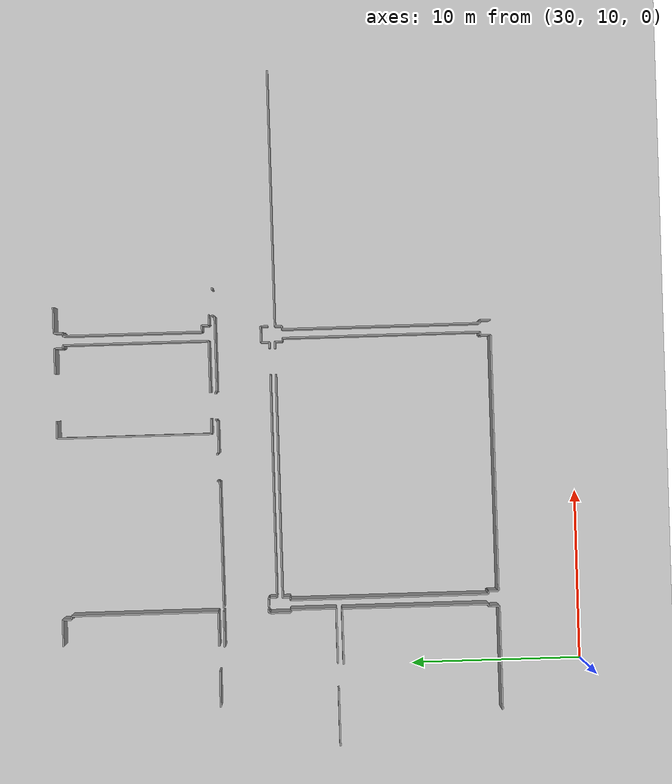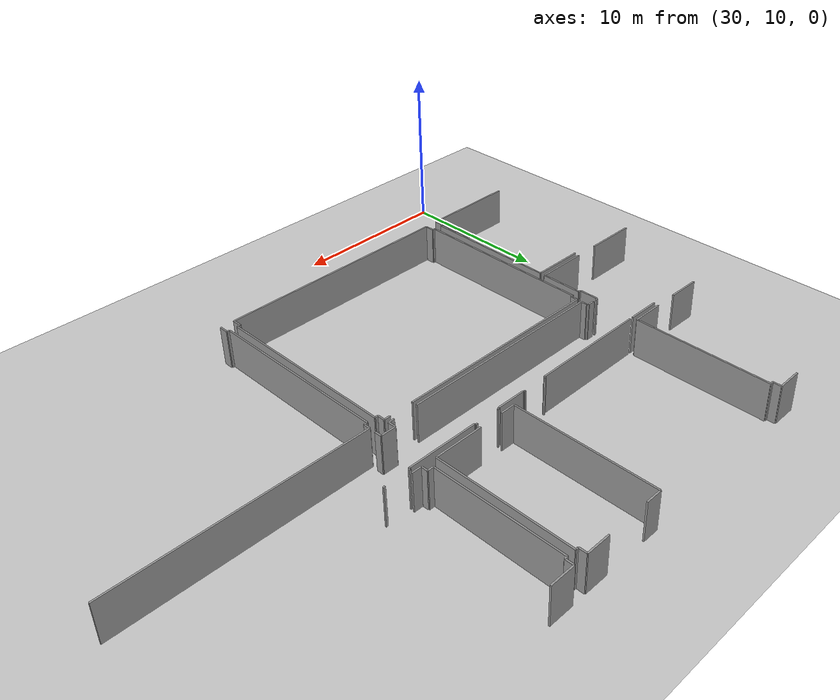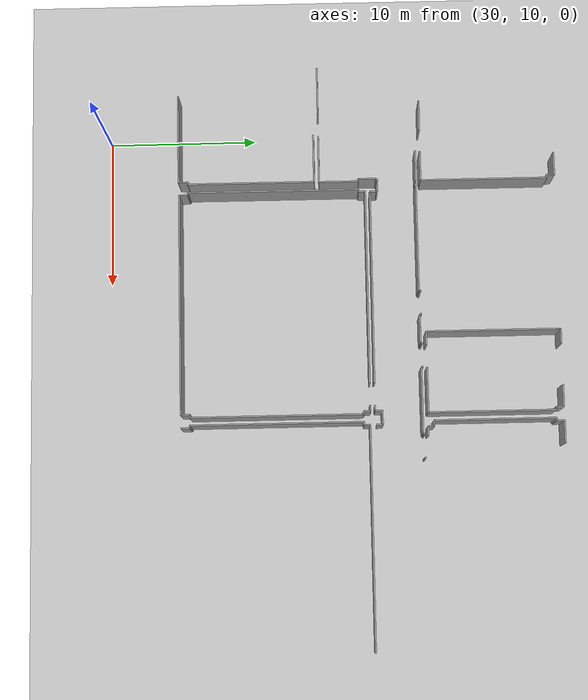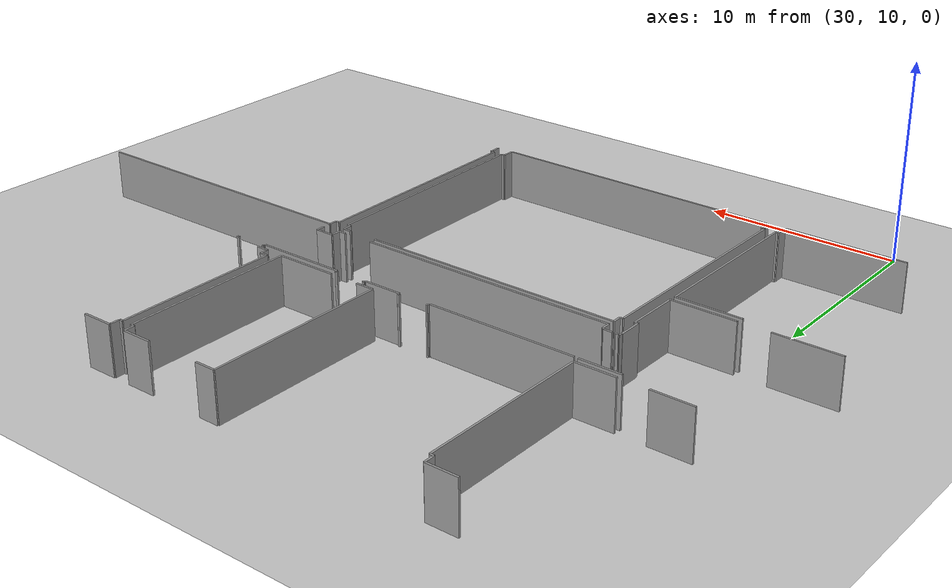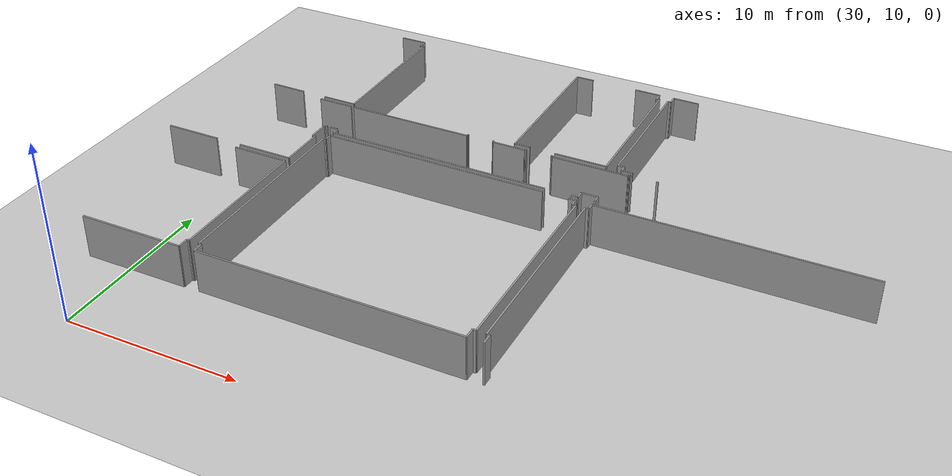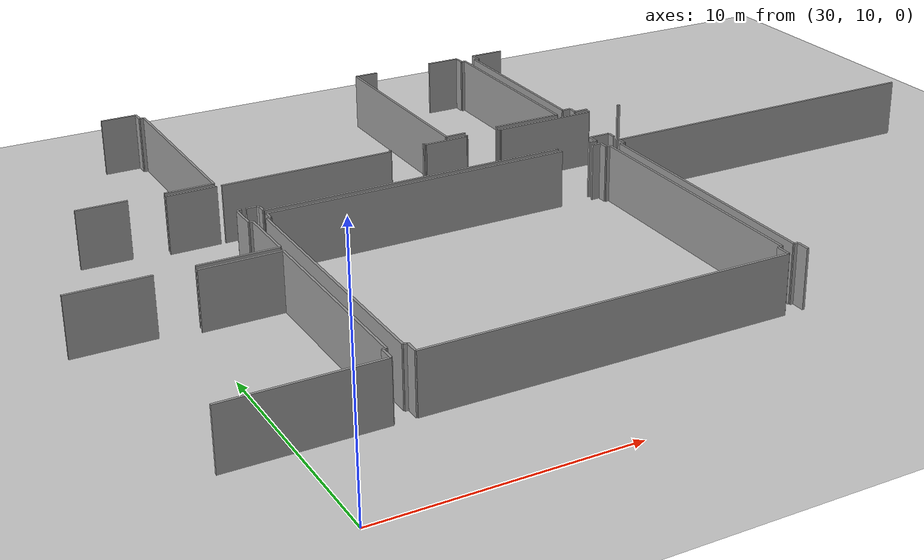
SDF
<sdf version="1.6">
 <world name="default">
  <model name="ground_plane">
   <static>1</static>
   <link name="link">
    <collision name="collision">
     <geometry><plane><normal>0 0 1</normal><size>100 100</size></plane></geometry>
     <surface><friction><ode><mu>100</mu><mu2>50</mu2></ode></friction></surface>
    </collision>
    <visual name="visual">
     <cast_shadows>0</cast_shadows>
     <geometry><plane><normal>0 0 1</normal><size>100 100</size></plane></geometry>
     <material>
      <script><uri>file://media/materials/scripts/gazebo.material</uri><name>Gazebo/Grey</name></script>
     </material>
    </visual>
   </link>
  </model>
  <model name="0510035739_A_40_1_102">
   <static>1</static>
   <link name="Wall_750">
    <collision name="Wall_750_Collision">
     <geometry><box><size>2.10934405539 0.1 2.5</size></box></geometry>
     <pose>1.05467202769 0 1.25 0 0 0</pose>
    </collision>
    <visual name="Wall_750_Visual">
     <pose>1.05467202769 0 1.25 0 0 0</pose>
     <geometry><box><size>2.10934405539 0.1 2.5</size></box></geometry>
     <material>
      <script><uri>file://media/materials/scripts/gazebo.material</uri><name>Gazebo/Grey</name></script>
      <ambient>1 1 1 1</ambient>
     </material>
    </visual>
    <pose>123.992801586 -18.7337058202 0 0 0 0.0</pose>
   </link>
   <link name="Wall_751">
    <collision name="Wall_751_Collision">
     <geometry><box><size>0.12634158332 0.1 2.5</size></box></geometry>
     <pose>0.0631707916599 0 1.25 0 0 0</pose>
    </collision>
    <visual name="Wall_751_Visual">
     <pose>0.0631707916599 0 1.25 0 0 0</pose>
     <geometry><box><size>0.12634158332 0.1 2.5</size></box></geometry>
     <material>
      <script><uri>file://media/materials/scripts/gazebo.material</uri><name>Gazebo/Grey</name></script>
      <ambient>1 1 1 1</ambient>
     </material>
    </visual>
    <pose>126.102145642 -21.3838224188 0 0 0 3.14159265359</pose>
   </link>
   <link name="Wall_752">
    <collision name="Wall_752_Collision">
     <geometry><box><size>0.134647181973 0.1 2.5</size></box></geometry>
     <pose>0.0673235909866 0 1.25 0 0 0</pose>
    </collision>
    <visual name="Wall_752_Visual">
     <pose>0.0673235909866 0 1.25 0 0 0</pose>
     <geometry><box><size>0.134647181973 0.1 2.5</size></box></geometry>
     <material>
      <script><uri>file://media/materials/scripts/gazebo.material</uri><name>Gazebo/Grey</name></script>
      <ambient>1 1 1 1</ambient>
     </material>
    </visual>
    <pose>125.975804058 -21.3838224188 0 0 0 -2.03359791231</pose>
   </link>
   <link name="Wall_753">
    <collision name="Wall_753_Collision">
     <geometry><box><size>1.18266929708 0.1 2.5</size></box></geometry>
     <pose>0.591334648542 0 1.25 0 0 0</pose>
    </collision>
    <visual name="Wall_753_Visual">
     <pose>0.591334648542 0 1.25 0 0 0</pose>
     <geometry><box><size>1.18266929708 0.1 2.5</size></box></geometry>
     <material>
      <script><uri>file://media/materials/scripts/gazebo.material</uri><name>Gazebo/Grey</name></script>
      <ambient>1 1 1 1</ambient>
     </material>
    </visual>
    <pose>125.915689918 -21.5043054206 0 0 0 -1.57079632679</pose>
   </link>
   <link name="Wall_754">
    <collision name="Wall_754_Collision">
     <geometry><box><size>0.164295002503 0.1 2.5</size></box></geometry>
     <pose>0.0821475012513 0 1.25 0 0 0</pose>
    </collision>
    <visual name="Wall_754_Visual">
     <pose>0.0821475012513 0 1.25 0 0 0</pose>
     <geometry><box><size>0.164295002503 0.1 2.5</size></box></geometry>
     <material>
      <script><uri>file://media/materials/scripts/gazebo.material</uri><name>Gazebo/Grey</name></script>
      <ambient>1 1 1 1</ambient>
     </material>
    </visual>
    <pose>125.915689918 -22.6869747177 0 0 0 0.0</pose>
   </link>
   <link name="Wall_755">
    <collision name="Wall_755_Collision">
     <geometry><box><size>2.67686229659 0.1 2.5</size></box></geometry>
     <pose>1.33843114829 0 1.25 0 0 0</pose>
    </collision>
    <visual name="Wall_755_Visual">
     <pose>1.33843114829 0 1.25 0 0 0</pose>
     <geometry><box><size>2.67686229659 0.1 2.5</size></box></geometry>
     <material>
      <script><uri>file://media/materials/scripts/gazebo.material</uri><name>Gazebo/Grey</name></script>
      <ambient>1 1 1 1</ambient>
     </material>
    </visual>
    <pose>126.079984921 -22.6869747177 0 0 0 -1.57079632679</pose>
   </link>
   <link name="Wall_756">
    <collision name="Wall_756_Collision">
     <geometry><box><size>3.2586449101 0.1 2.5</size></box></geometry>
     <pose>1.62932245505 0 1.25 0 0 0</pose>
    </collision>
    <visual name="Wall_756_Visual">
     <pose>1.62932245505 0 1.25 0 0 0</pose>
     <geometry><box><size>3.2586449101 0.1 2.5</size></box></geometry>
     <material>
      <script><uri>file://media/materials/scripts/gazebo.material</uri><name>Gazebo/Grey</name></script>
      <ambient>1 1 1 1</ambient>
     </material>
    </visual>
    <pose>126.079984921 -25.3638370143 0 0 0 3.14159265359</pose>
   </link>
   <link name="Wall_757">
    <collision name="Wall_757_Collision">
     <geometry><box><size>3.28615477099 0.1 2.5</size></box></geometry>
     <pose>1.64307738549 0 1.25 0 0 0</pose>
    </collision>
    <visual name="Wall_757_Visual">
     <pose>1.64307738549 0 1.25 0 0 0</pose>
     <geometry><box><size>3.28615477099 0.1 2.5</size></box></geometry>
     <material>
      <script><uri>file://media/materials/scripts/gazebo.material</uri><name>Gazebo/Grey</name></script>
      <ambient>1 1 1 1</ambient>
     </material>
    </visual>
    <pose>121.258881801 -25.3638370143 0 0 0 3.14159265359</pose>
   </link>
   <link name="Wall_783">
    <collision name="Wall_783_Collision">
     <geometry><box><size>1.57137344254 0.1 2.5</size></box></geometry>
     <pose>0.78568672127 0 1.25 0 0 0</pose>
    </collision>
    <visual name="Wall_783_Visual">
     <pose>0.78568672127 0 1.25 0 0 0</pose>
     <geometry><box><size>1.57137344254 0.1 2.5</size></box></geometry>
     <material>
      <script><uri>file://media/materials/scripts/gazebo.material</uri><name>Gazebo/Grey</name></script>
      <ambient>1 1 1 1</ambient>
     </material>
    </visual>
    <pose>124.322410475 -9.2509548851 0 0 0 0.0</pose>
   </link>
   <link name="Wall_784">
    <collision name="Wall_784_Collision">
     <geometry><box><size>0.520394868392 0.1 2.5</size></box></geometry>
     <pose>0.260197434196 0 1.25 0 0 0</pose>
    </collision>
    <visual name="Wall_784_Visual">
     <pose>0.260197434196 0 1.25 0 0 0</pose>
     <geometry><box><size>0.520394868392 0.1 2.5</size></box></geometry>
     <material>
      <script><uri>file://media/materials/scripts/gazebo.material</uri><name>Gazebo/Grey</name></script>
      <ambient>1 1 1 1</ambient>
     </material>
    </visual>
    <pose>125.893783918 -9.2509548851 0 0 0 -1.57079632679</pose>
   </link>
   <link name="Wall_785">
    <collision name="Wall_785_Collision">
     <geometry><box><size>0.197154003003 0.1 2.5</size></box></geometry>
     <pose>0.0985770015016 0 1.25 0 0 0</pose>
    </collision>
    <visual name="Wall_785_Visual">
     <pose>0.0985770015016 0 1.25 0 0 0</pose>
     <geometry><box><size>0.197154003003 0.1 2.5</size></box></geometry>
     <material>
      <script><uri>file://media/materials/scripts/gazebo.material</uri><name>Gazebo/Grey</name></script>
      <ambient>1 1 1 1</ambient>
     </material>
    </visual>
    <pose>125.893783918 -9.77134975349 0 0 0 0.0</pose>
   </link>
   <link name="Wall_786">
    <collision name="Wall_786_Collision">
     <geometry><box><size>8.63911520136 0.1 2.5</size></box></geometry>
     <pose>4.31955760068 0 1.25 0 0 0</pose>
    </collision>
    <visual name="Wall_786_Visual">
     <pose>4.31955760068 0 1.25 0 0 0</pose>
     <geometry><box><size>8.63911520136 0.1 2.5</size></box></geometry>
     <material>
      <script><uri>file://media/materials/scripts/gazebo.material</uri><name>Gazebo/Grey</name></script>
      <ambient>1 1 1 1</ambient>
     </material>
    </visual>
    <pose>126.090937921 -9.77134975349 0 0 0 -1.57079632679</pose>
   </link>
   <link name="Wall_787">
    <collision name="Wall_787_Collision">
     <geometry><box><size>2.04260717065 0.1 2.5</size></box></geometry>
     <pose>1.02130358532 0 1.25 0 0 0</pose>
    </collision>
    <visual name="Wall_787_Visual">
     <pose>1.02130358532 0 1.25 0 0 0</pose>
     <geometry><box><size>2.04260717065 0.1 2.5</size></box></geometry>
     <material>
      <script><uri>file://media/materials/scripts/gazebo.material</uri><name>Gazebo/Grey</name></script>
      <ambient>1 1 1 1</ambient>
     </material>
    </visual>
    <pose>126.090937921 -18.4104649549 0 0 0 3.14159265359</pose>
   </link>
   <link name="Wall_788">
    <collision name="Wall_788_Collision">
     <geometry><box><size>2.09012534845 0.1 2.5</size></box></geometry>
     <pose>1.04506267423 0 1.25 0 0 0</pose>
    </collision>
    <visual name="Wall_788_Visual">
     <pose>1.04506267423 0 1.25 0 0 0</pose>
     <geometry><box><size>2.09012534845 0.1 2.5</size></box></geometry>
     <material>
      <script><uri>file://media/materials/scripts/gazebo.material</uri><name>Gazebo/Grey</name></script>
      <ambient>1 1 1 1</ambient>
     </material>
    </visual>
    <pose>122.567128518 -18.4104649549 0 0 0 3.13001486502</pose>
   </link>
   <link name="Wall_789">
    <collision name="Wall_789_Collision">
     <geometry><box><size>9.08564099886 0.1 2.5</size></box></geometry>
     <pose>4.54282049943 0 1.25 0 0 0</pose>
    </collision>
    <visual name="Wall_789_Visual">
     <pose>4.54282049943 0 1.25 0 0 0</pose>
     <geometry><box><size>9.08564099886 0.1 2.5</size></box></geometry>
     <material>
      <script><uri>file://media/materials/scripts/gazebo.material</uri><name>Gazebo/Grey</name></script>
      <ambient>1 1 1 1</ambient>
     </material>
    </visual>
    <pose>136.572449638 -18.3381242096 0 0 0 1.57079632679</pose>
   </link>
   <link name="Wall_790">
    <collision name="Wall_790_Collision">
     <geometry><box><size>1.03926141118 0.1 2.5</size></box></geometry>
     <pose>0.51963070559 0 1.25 0 0 0</pose>
    </collision>
    <visual name="Wall_790_Visual">
     <pose>0.51963070559 0 1.25 0 0 0</pose>
     <geometry><box><size>1.03926141118 0.1 2.5</size></box></geometry>
     <material>
      <script><uri>file://media/materials/scripts/gazebo.material</uri><name>Gazebo/Grey</name></script>
      <ambient>1 1 1 1</ambient>
     </material>
    </visual>
    <pose>136.572449638 -9.25248321071 0 0 0 0.0</pose>
   </link>
   <link name="Wall_791">
    <collision name="Wall_791_Collision">
     <geometry><box><size>1.50489127874 0.1 2.5</size></box></geometry>
     <pose>0.752445639369 0 1.25 0 0 0</pose>
    </collision>
    <visual name="Wall_791_Visual">
     <pose>0.752445639369 0 1.25 0 0 0</pose>
     <geometry><box><size>1.50489127874 0.1 2.5</size></box></geometry>
     <material>
      <script><uri>file://media/materials/scripts/gazebo.material</uri><name>Gazebo/Grey</name></script>
      <ambient>1 1 1 1</ambient>
     </material>
    </visual>
    <pose>140.375942627 -9.25248321071 0 0 0 0.0</pose>
   </link>
   <link name="Wall_792">
    <collision name="Wall_792_Collision">
     <geometry><box><size>0.507913542621 0.1 2.5</size></box></geometry>
     <pose>0.25395677131 0 1.25 0 0 0</pose>
    </collision>
    <visual name="Wall_792_Visual">
     <pose>0.25395677131 0 1.25 0 0 0</pose>
     <geometry><box><size>0.507913542621 0.1 2.5</size></box></geometry>
     <material>
      <script><uri>file://media/materials/scripts/gazebo.material</uri><name>Gazebo/Grey</name></script>
      <ambient>1 1 1 1</ambient>
     </material>
    </visual>
    <pose>141.880833905 -9.25248321071 0 0 0 -1.57079632679</pose>
   </link>
   <link name="Wall_793">
    <collision name="Wall_793_Collision">
     <geometry><box><size>0.18085186322 0.1 2.5</size></box></geometry>
     <pose>0.09042593161 0 1.25 0 0 0</pose>
    </collision>
    <visual name="Wall_793_Visual">
     <pose>0.09042593161 0 1.25 0 0 0</pose>
     <geometry><box><size>0.18085186322 0.1 2.5</size></box></geometry>
     <material>
      <script><uri>file://media/materials/scripts/gazebo.material</uri><name>Gazebo/Grey</name></script>
      <ambient>1 1 1 1</ambient>
     </material>
    </visual>
    <pose>141.880833905 -9.76039675333 0 0 0 0.0</pose>
   </link>
   <link name="Wall_794">
    <collision name="Wall_794_Collision">
     <geometry><box><size>8.57874633998 0.1 2.5</size></box></geometry>
     <pose>4.28937316999 0 1.25 0 0 0</pose>
    </collision>
    <visual name="Wall_794_Visual">
     <pose>4.28937316999 0 1.25 0 0 0</pose>
     <geometry><box><size>8.57874633998 0.1 2.5</size></box></geometry>
     <material>
      <script><uri>file://media/materials/scripts/gazebo.material</uri><name>Gazebo/Grey</name></script>
      <ambient>1 1 1 1</ambient>
     </material>
    </visual>
    <pose>142.061685769 -9.76039675333 0 0 0 -1.57079632679</pose>
   </link>
   <link name="Wall_795">
    <collision name="Wall_795_Collision">
     <geometry><box><size>3.06633060485 0.1 2.5</size></box></geometry>
     <pose>1.53316530242 0 1.25 0 0 0</pose>
    </collision>
    <visual name="Wall_795_Visual">
     <pose>1.53316530242 0 1.25 0 0 0</pose>
     <geometry><box><size>3.06633060485 0.1 2.5</size></box></geometry>
     <material>
      <script><uri>file://media/materials/scripts/gazebo.material</uri><name>Gazebo/Grey</name></script>
      <ambient>1 1 1 1</ambient>
     </material>
    </visual>
    <pose>142.061685769 -18.3391430933 0 0 0 3.14159265359</pose>
   </link>
   <link name="Wall_796">
    <collision name="Wall_796_Collision">
     <geometry><box><size>0.919797857403 0.1 2.5</size></box></geometry>
     <pose>0.459898928701 0 1.25 0 0 0</pose>
    </collision>
    <visual name="Wall_796_Visual">
     <pose>0.459898928701 0 1.25 0 0 0</pose>
     <geometry><box><size>0.919797857403 0.1 2.5</size></box></geometry>
     <material>
      <script><uri>file://media/materials/scripts/gazebo.material</uri><name>Gazebo/Grey</name></script>
      <ambient>1 1 1 1</ambient>
     </material>
    </visual>
    <pose>137.492246932 -18.3391430933 0 0 0 3.14048492765</pose>
   </link>
   <link name="Wall_797">
    <collision name="Wall_797_Collision">
     <geometry><box><size>8.19691965974 0.1 2.5</size></box></geometry>
     <pose>4.09845982987 0 1.25 0 0 0</pose>
    </collision>
    <visual name="Wall_797_Visual">
     <pose>4.09845982987 0 1.25 0 0 0</pose>
     <geometry><box><size>8.19691965974 0.1 2.5</size></box></geometry>
     <material>
      <script><uri>file://media/materials/scripts/gazebo.material</uri><name>Gazebo/Grey</name></script>
      <ambient>1 1 1 1</ambient>
     </material>
    </visual>
    <pose>142.603731916 -17.9649580411 0 0 0 1.57079632679</pose>
   </link>
   <link name="Wall_798">
    <collision name="Wall_798_Collision">
     <geometry><box><size>0.181106584154 0.1 2.5</size></box></geometry>
     <pose>0.090553292077 0 1.25 0 0 0</pose>
    </collision>
    <visual name="Wall_798_Visual">
     <pose>0.090553292077 0 1.25 0 0 0</pose>
     <geometry><box><size>0.181106584154 0.1 2.5</size></box></geometry>
     <material>
      <script><uri>file://media/materials/scripts/gazebo.material</uri><name>Gazebo/Grey</name></script>
      <ambient>1 1 1 1</ambient>
     </material>
    </visual>
    <pose>142.603731916 -9.76803838135 0 0 0 0.0</pose>
   </link>
   <link name="Wall_799">
    <collision name="Wall_799_Collision">
     <geometry><box><size>0.524725124272 0.1 2.5</size></box></geometry>
     <pose>0.262362562136 0 1.25 0 0 0</pose>
    </collision>
    <visual name="Wall_799_Visual">
     <pose>0.262362562136 0 1.25 0 0 0</pose>
     <geometry><box><size>0.524725124272 0.1 2.5</size></box></geometry>
     <material>
      <script><uri>file://media/materials/scripts/gazebo.material</uri><name>Gazebo/Grey</name></script>
      <ambient>1 1 1 1</ambient>
     </material>
    </visual>
    <pose>142.784838501 -9.76803838135 0 0 0 1.57079632679</pose>
   </link>
   <link name="Wall_800">
    <collision name="Wall_800_Collision">
     <geometry><box><size>1.53214641869 0.1 2.5</size></box></geometry>
     <pose>0.766073209344 0 1.25 0 0 0</pose>
    </collision>
    <visual name="Wall_800_Visual">
     <pose>0.766073209344 0 1.25 0 0 0</pose>
     <geometry><box><size>1.53214641869 0.1 2.5</size></box></geometry>
     <material>
      <script><uri>file://media/materials/scripts/gazebo.material</uri><name>Gazebo/Grey</name></script>
      <ambient>1 1 1 1</ambient>
     </material>
    </visual>
    <pose>142.784838501 -9.24331325708 0 0 0 0.0</pose>
   </link>
   <link name="Wall_805">
    <collision name="Wall_805_Collision">
     <geometry><box><size>0.624575730444 0.1 2.5</size></box></geometry>
     <pose>0.312287865222 0 1.25 0 0 0</pose>
    </collision>
    <visual name="Wall_805_Visual">
     <pose>0.312287865222 0 1.25 0 0 0</pose>
     <geometry><box><size>0.624575730444 0.1 2.5</size></box></geometry>
     <material>
      <script><uri>file://media/materials/scripts/gazebo.material</uri><name>Gazebo/Grey</name></script>
      <ambient>1 1 1 1</ambient>
     </material>
    </visual>
    <pose>143.609115443 -18.3821909312 0 0 0 3.14159265359</pose>
   </link>
   <link name="Wall_806">
    <collision name="Wall_806_Collision">
     <geometry><box><size>0.42054426222 0.1 2.5</size></box></geometry>
     <pose>0.21027213111 0 1.25 0 0 0</pose>
    </collision>
    <visual name="Wall_806_Visual">
     <pose>0.21027213111 0 1.25 0 0 0</pose>
     <geometry><box><size>0.42054426222 0.1 2.5</size></box></geometry>
     <material>
      <script><uri>file://media/materials/scripts/gazebo.material</uri><name>Gazebo/Grey</name></script>
      <ambient>1 1 1 1</ambient>
     </material>
    </visual>
    <pose>142.984539713 -18.3821909312 0 0 0 1.57079632679</pose>
   </link>
   <link name="Wall_807">
    <collision name="Wall_807_Collision">
     <geometry><box><size>0.380822193496 0.1 2.5</size></box></geometry>
     <pose>0.190411096748 0 1.25 0 0 0</pose>
    </collision>
    <visual name="Wall_807_Visual">
     <pose>0.190411096748 0 1.25 0 0 0</pose>
     <geometry><box><size>0.380822193496 0.1 2.5</size></box></geometry>
     <material>
      <script><uri>file://media/materials/scripts/gazebo.material</uri><name>Gazebo/Grey</name></script>
      <ambient>1 1 1 1</ambient>
     </material>
    </visual>
    <pose>142.984539713 -17.961646669 0 0 0 -3.13289722058</pose>
   </link>
   <link name="Wall_823">
    <collision name="Wall_823_Collision">
     <geometry><box><size>3.29940025956 0.1 2.5</size></box></geometry>
     <pose>1.64970012978 0 1.25 0 0 0</pose>
    </collision>
    <visual name="Wall_823_Visual">
     <pose>1.64970012978 0 1.25 0 0 0</pose>
     <geometry><box><size>3.29940025956 0.1 2.5</size></box></geometry>
     <material>
      <script><uri>file://media/materials/scripts/gazebo.material</uri><name>Gazebo/Grey</name></script>
      <ambient>1 1 1 1</ambient>
     </material>
    </visual>
    <pose>122.758678661 -25.7041441822 0 0 0 0.0</pose>
   </link>
   <link name="Wall_824">
    <collision name="Wall_824_Collision">
     <geometry><box><size>8.62281306158 0.1 2.5</size></box></geometry>
     <pose>4.31140653079 0 1.25 0 0 0</pose>
    </collision>
    <visual name="Wall_824_Visual">
     <pose>4.31140653079 0 1.25 0 0 0</pose>
     <geometry><box><size>8.62281306158 0.1 2.5</size></box></geometry>
     <material>
      <script><uri>file://media/materials/scripts/gazebo.material</uri><name>Gazebo/Grey</name></script>
      <ambient>1 1 1 1</ambient>
     </material>
    </visual>
    <pose>126.05807892 -25.7041441822 0 0 0 -1.57079632679</pose>
   </link>
   <link name="Wall_825">
    <collision name="Wall_825_Collision">
     <geometry><box><size>0.142389002169 0.1 2.5</size></box></geometry>
     <pose>0.0711945010845 0 1.25 0 0 0</pose>
    </collision>
    <visual name="Wall_825_Visual">
     <pose>0.0711945010845 0 1.25 0 0 0</pose>
     <geometry><box><size>0.142389002169 0.1 2.5</size></box></geometry>
     <material>
      <script><uri>file://media/materials/scripts/gazebo.material</uri><name>Gazebo/Grey</name></script>
      <ambient>1 1 1 1</ambient>
     </material>
    </visual>
    <pose>126.05807892 -34.3269572438 0 0 0 3.14159265359</pose>
   </link>
   <link name="Wall_826">
    <collision name="Wall_826_Collision">
     <geometry><box><size>0.640623149293 0.1 2.5</size></box></geometry>
     <pose>0.320311574647 0 1.25 0 0 0</pose>
    </collision>
    <visual name="Wall_826_Visual">
     <pose>0.320311574647 0 1.25 0 0 0</pose>
     <geometry><box><size>0.640623149293 0.1 2.5</size></box></geometry>
     <material>
      <script><uri>file://media/materials/scripts/gazebo.material</uri><name>Gazebo/Grey</name></script>
      <ambient>1 1 1 1</ambient>
     </material>
    </visual>
    <pose>125.915689918 -34.3269572438 0 0 0 -1.57079632679</pose>
   </link>
   <link name="Wall_827">
    <collision name="Wall_827_Collision">
     <geometry><box><size>6.09318082791 0.1 2.5</size></box></geometry>
     <pose>3.04659041395 0 1.25 0 0 0</pose>
    </collision>
    <visual name="Wall_827_Visual">
     <pose>3.04659041395 0 1.25 0 0 0</pose>
     <geometry><box><size>6.09318082791 0.1 2.5</size></box></geometry>
     <material>
      <script><uri>file://media/materials/scripts/gazebo.material</uri><name>Gazebo/Grey</name></script>
      <ambient>1 1 1 1</ambient>
     </material>
    </visual>
    <pose>125.915689918 -34.9675803931 0 0 0 -3.14092378533</pose>
   </link>
   <link name="Wall_828">
    <collision name="Wall_828_Collision">
     <geometry><box><size>11.6728415266 0.1 2.5</size></box></geometry>
     <pose>5.83642076332 0 1.25 0 0 0</pose>
    </collision>
    <visual name="Wall_828_Visual">
     <pose>5.83642076332 0 1.25 0 0 0</pose>
     <geometry><box><size>11.6728415266 0.1 2.5</size></box></geometry>
     <material>
      <script><uri>file://media/materials/scripts/gazebo.material</uri><name>Gazebo/Grey</name></script>
      <ambient>1 1 1 1</ambient>
     </material>
    </visual>
    <pose>142.613156591 -34.3396932905 0 0 0 1.57079632679</pose>
   </link>
   <link name="Wall_829">
    <collision name="Wall_829_Collision">
     <geometry><box><size>0.201229537949 0.1 2.5</size></box></geometry>
     <pose>0.100614768974 0 1.25 0 0 0</pose>
    </collision>
    <visual name="Wall_829_Visual">
     <pose>0.100614768974 0 1.25 0 0 0</pose>
     <geometry><box><size>0.201229537949 0.1 2.5</size></box></geometry>
     <material>
      <script><uri>file://media/materials/scripts/gazebo.material</uri><name>Gazebo/Grey</name></script>
      <ambient>1 1 1 1</ambient>
     </material>
    </visual>
    <pose>142.613156591 -22.6668517639 0 0 0 0.0</pose>
   </link>
   <link name="Wall_830">
    <collision name="Wall_830_Collision">
     <geometry><box><size>0.41188375046 0.1 2.5</size></box></geometry>
     <pose>0.20594187523 0 1.25 0 0 0</pose>
    </collision>
    <visual name="Wall_830_Visual">
     <pose>0.20594187523 0 1.25 0 0 0</pose>
     <geometry><box><size>0.41188375046 0.1 2.5</size></box></geometry>
     <material>
      <script><uri>file://media/materials/scripts/gazebo.material</uri><name>Gazebo/Grey</name></script>
      <ambient>1 1 1 1</ambient>
     </material>
    </visual>
    <pose>142.814386129 -22.6668517639 0 0 0 1.57079632679</pose>
   </link>
   <link name="Wall_831">
    <collision name="Wall_831_Collision">
     <geometry><box><size>15.0700546249 0.1 2.5</size></box></geometry>
     <pose>7.53502731245 0 1.25 0 0 0</pose>
    </collision>
    <visual name="Wall_831_Visual">
     <pose>7.53502731245 0 1.25 0 0 0</pose>
     <geometry><box><size>15.0700546249 0.1 2.5</size></box></geometry>
     <material>
      <script><uri>file://media/materials/scripts/gazebo.material</uri><name>Gazebo/Grey</name></script>
      <ambient>1 1 1 1</ambient>
     </material>
    </visual>
    <pose>142.814386129 -22.2549680134 0 0 0 0.0</pose>
   </link>
   <link name="Wall_841">
    <collision name="Wall_841_Collision">
     <geometry><box><size>0.595282823021 0.1 2.5</size></box></geometry>
     <pose>0.297641411511 0 1.25 0 0 0</pose>
    </collision>
    <visual name="Wall_841_Visual">
     <pose>0.297641411511 0 1.25 0 0 0</pose>
     <geometry><box><size>0.595282823021 0.1 2.5</size></box></geometry>
     <material>
      <script><uri>file://media/materials/scripts/gazebo.material</uri><name>Gazebo/Grey</name></script>
      <ambient>1 1 1 1</ambient>
     </material>
    </visual>
    <pose>142.788149873 -34.9505140905 0 0 0 1.57079632679</pose>
   </link>
   <link name="Wall_842">
    <collision name="Wall_842_Collision">
     <geometry><box><size>0.175681750279 0.1 2.5</size></box></geometry>
     <pose>0.0878408751396 0 1.25 0 0 0</pose>
    </collision>
    <visual name="Wall_842_Visual">
     <pose>0.0878408751396 0 1.25 0 0 0</pose>
     <geometry><box><size>0.175681750279 0.1 2.5</size></box></geometry>
     <material>
      <script><uri>file://media/materials/scripts/gazebo.material</uri><name>Gazebo/Grey</name></script>
      <ambient>1 1 1 1</ambient>
     </material>
    </visual>
    <pose>142.788149873 -34.3552312675 0 0 0 3.05303305209</pose>
   </link>
   <link name="Wall_843">
    <collision name="Wall_843_Collision">
     <geometry><box><size>0.0109530001668 0.1 2.5</size></box></geometry>
     <pose>0.00547650008342 0 1.25 0 0 0</pose>
    </collision>
    <visual name="Wall_843_Visual">
     <pose>0.00547650008342 0 1.25 0 0 0</pose>
     <geometry><box><size>0.0109530001668 0.1 2.5</size></box></geometry>
     <material>
      <script><uri>file://media/materials/scripts/gazebo.material</uri><name>Gazebo/Grey</name></script>
      <ambient>1 1 1 1</ambient>
     </material>
    </visual>
    <pose>126.82962863 -21.8947926126 0 0 0 3.14159265359</pose>
   </link>
   <link name="Wall_844">
    <collision name="Wall_844_Collision">
     <geometry><box><size>0.407298773646 0.1 2.5</size></box></geometry>
     <pose>0.203649386823 0 1.25 0 0 0</pose>
    </collision>
    <visual name="Wall_844_Visual">
     <pose>0.203649386823 0 1.25 0 0 0</pose>
     <geometry><box><size>0.407298773646 0.1 2.5</size></box></geometry>
     <material>
      <script><uri>file://media/materials/scripts/gazebo.material</uri><name>Gazebo/Grey</name></script>
      <ambient>1 1 1 1</ambient>
     </material>
    </visual>
    <pose>126.818675629 -21.8947926126 0 0 0 1.57079632679</pose>
   </link>
   <link name="Wall_845">
    <collision name="Wall_845_Collision">
     <geometry><box><size>0.124639510676 0.1 2.5</size></box></geometry>
     <pose>0.0623197553381 0 1.25 0 0 0</pose>
    </collision>
    <visual name="Wall_845_Visual">
     <pose>0.0623197553381 0 1.25 0 0 0</pose>
     <geometry><box><size>0.124639510676 0.1 2.5</size></box></geometry>
     <material>
      <script><uri>file://media/materials/scripts/gazebo.material</uri><name>Gazebo/Grey</name></script>
      <ambient>1 1 1 1</ambient>
     </material>
    </visual>
    <pose>126.818675629 -21.4874938389 0 0 0 2.35619449019</pose>
   </link>
   <link name="Wall_846">
    <collision name="Wall_846_Collision">
     <geometry><box><size>0.429459494914 0.1 2.5</size></box></geometry>
     <pose>0.214729747457 0 1.25 0 0 0</pose>
    </collision>
    <visual name="Wall_846_Visual">
     <pose>0.214729747457 0 1.25 0 0 0</pose>
     <geometry><box><size>0.429459494914 0.1 2.5</size></box></geometry>
     <material>
      <script><uri>file://media/materials/scripts/gazebo.material</uri><name>Gazebo/Grey</name></script>
      <ambient>1 1 1 1</ambient>
     </material>
    </visual>
    <pose>126.730542186 -21.3993603957 0 0 0 3.14159265359</pose>
   </link>
   <link name="Wall_847">
    <collision name="Wall_847_Collision">
     <geometry><box><size>7.44905899719 0.1 2.5</size></box></geometry>
     <pose>3.72452949859 0 1.25 0 0 0</pose>
    </collision>
    <visual name="Wall_847_Visual">
     <pose>3.72452949859 0 1.25 0 0 0</pose>
     <geometry><box><size>7.44905899719 0.1 2.5</size></box></geometry>
     <material>
      <script><uri>file://media/materials/scripts/gazebo.material</uri><name>Gazebo/Grey</name></script>
      <ambient>1 1 1 1</ambient>
     </material>
    </visual>
    <pose>126.301082691 -18.7474607507 0 0 0 0.0</pose>
   </link>
   <link name="Wall_848">
    <collision name="Wall_848_Collision">
     <geometry><box><size>0.102907257381 0.1 2.5</size></box></geometry>
     <pose>0.0514536286907 0 1.25 0 0 0</pose>
    </collision>
    <visual name="Wall_848_Visual">
     <pose>0.0514536286907 0 1.25 0 0 0</pose>
     <geometry><box><size>0.102907257381 0.1 2.5</size></box></geometry>
     <material>
      <script><uri>file://media/materials/scripts/gazebo.material</uri><name>Gazebo/Grey</name></script>
      <ambient>1 1 1 1</ambient>
     </material>
    </visual>
    <pose>133.750141689 -18.7474607507 0 0 0 1.57079632679</pose>
   </link>
   <link name="Wall_849">
    <collision name="Wall_849_Collision">
     <geometry><box><size>0.0748879546291 0.1 2.5</size></box></geometry>
     <pose>0.0374439773145 0 1.25 0 0 0</pose>
    </collision>
    <visual name="Wall_849_Visual">
     <pose>0.0374439773145 0 1.25 0 0 0</pose>
     <geometry><box><size>0.0748879546291 0.1 2.5</size></box></geometry>
     <material>
      <script><uri>file://media/materials/scripts/gazebo.material</uri><name>Gazebo/Grey</name></script>
      <ambient>1 1 1 1</ambient>
     </material>
    </visual>
    <pose>133.750141689 -18.6445534933 0 0 0 0.0</pose>
   </link>
   <link name="Wall_850">
    <collision name="Wall_850_Collision">
     <geometry><box><size>0.101378931777 0.1 2.5</size></box></geometry>
     <pose>0.0506894658884 0 1.25 0 0 0</pose>
    </collision>
    <visual name="Wall_850_Visual">
     <pose>0.0506894658884 0 1.25 0 0 0</pose>
     <geometry><box><size>0.101378931777 0.1 2.5</size></box></geometry>
     <material>
      <script><uri>file://media/materials/scripts/gazebo.material</uri><name>Gazebo/Grey</name></script>
      <ambient>1 1 1 1</ambient>
     </material>
    </visual>
    <pose>135.312599898 -18.6445534933 0 0 0 0.0</pose>
   </link>
   <link name="Wall_851">
    <collision name="Wall_851_Collision">
     <geometry><box><size>0.0845673501254 0.1 2.5</size></box></geometry>
     <pose>0.0422836750627 0 1.25 0 0 0</pose>
    </collision>
    <visual name="Wall_851_Visual">
     <pose>0.0422836750627 0 1.25 0 0 0</pose>
     <geometry><box><size>0.0845673501254 0.1 2.5</size></box></geometry>
     <material>
      <script><uri>file://media/materials/scripts/gazebo.material</uri><name>Gazebo/Grey</name></script>
      <ambient>1 1 1 1</ambient>
     </material>
    </visual>
    <pose>135.41397883 -18.6445534933 0 0 0 -1.57079632679</pose>
   </link>
   <link name="Wall_852">
    <collision name="Wall_852_Collision">
     <geometry><box><size>1.91881279667 0.1 2.5</size></box></geometry>
     <pose>0.959406398335 0 1.25 0 0 0</pose>
    </collision>
    <visual name="Wall_852_Visual">
     <pose>0.959406398335 0 1.25 0 0 0</pose>
     <geometry><box><size>1.91881279667 0.1 2.5</size></box></geometry>
     <material>
      <script><uri>file://media/materials/scripts/gazebo.material</uri><name>Gazebo/Grey</name></script>
      <ambient>1 1 1 1</ambient>
     </material>
    </visual>
    <pose>135.41397883 -18.7291208434 0 0 0 0.0</pose>
   </link>
   <link name="Wall_853">
    <collision name="Wall_853_Collision">
     <geometry><box><size>0.0797276523773 0.1 2.5</size></box></geometry>
     <pose>0.0398638261886 0 1.25 0 0 0</pose>
    </collision>
    <visual name="Wall_853_Visual">
     <pose>0.0398638261886 0 1.25 0 0 0</pose>
     <geometry><box><size>0.0797276523773 0.1 2.5</size></box></geometry>
     <material>
      <script><uri>file://media/materials/scripts/gazebo.material</uri><name>Gazebo/Grey</name></script>
      <ambient>1 1 1 1</ambient>
     </material>
    </visual>
    <pose>137.332791627 -18.7291208434 0 0 0 1.57079632679</pose>
   </link>
   <link name="Wall_854">
    <collision name="Wall_854_Collision">
     <geometry><box><size>0.108765838866 0.1 2.5</size></box></geometry>
     <pose>0.0543829194331 0 1.25 0 0 0</pose>
    </collision>
    <visual name="Wall_854_Visual">
     <pose>0.0543829194331 0 1.25 0 0 0</pose>
     <geometry><box><size>0.108765838866 0.1 2.5</size></box></geometry>
     <material>
      <script><uri>file://media/materials/scripts/gazebo.material</uri><name>Gazebo/Grey</name></script>
      <ambient>1 1 1 1</ambient>
     </material>
    </visual>
    <pose>137.332791627 -18.6493931911 0 0 0 0.0</pose>
   </link>
   <link name="Wall_855">
    <collision name="Wall_855_Collision">
     <geometry><box><size>0.119718839033 0.1 2.5</size></box></geometry>
     <pose>0.0598594195165 0 1.25 0 0 0</pose>
    </collision>
    <visual name="Wall_855_Visual">
     <pose>0.0598594195165 0 1.25 0 0 0</pose>
     <geometry><box><size>0.119718839033 0.1 2.5</size></box></geometry>
     <material>
      <script><uri>file://media/materials/scripts/gazebo.material</uri><name>Gazebo/Grey</name></script>
      <ambient>1 1 1 1</ambient>
     </material>
    </visual>
    <pose>138.91511807 -18.6493931911 0 0 0 0.0</pose>
   </link>
   <link name="Wall_856">
    <collision name="Wall_856_Collision">
     <geometry><box><size>0.079218210509 0.1 2.5</size></box></geometry>
     <pose>0.0396091052545 0 1.25 0 0 0</pose>
    </collision>
    <visual name="Wall_856_Visual">
     <pose>0.0396091052545 0 1.25 0 0 0</pose>
     <geometry><box><size>0.079218210509 0.1 2.5</size></box></geometry>
     <material>
      <script><uri>file://media/materials/scripts/gazebo.material</uri><name>Gazebo/Grey</name></script>
      <ambient>1 1 1 1</ambient>
     </material>
    </visual>
    <pose>139.034836909 -18.6493931911 0 0 0 -1.57079632679</pose>
   </link>
   <link name="Wall_857">
    <collision name="Wall_857_Collision">
     <geometry><box><size>4.44360669559 0.1 2.5</size></box></geometry>
     <pose>2.2218033478 0 1.25 0 0 0</pose>
    </collision>
    <visual name="Wall_857_Visual">
     <pose>2.2218033478 0 1.25 0 0 0</pose>
     <geometry><box><size>4.44360669559 0.1 2.5</size></box></geometry>
     <material>
      <script><uri>file://media/materials/scripts/gazebo.material</uri><name>Gazebo/Grey</name></script>
      <ambient>1 1 1 1</ambient>
     </material>
    </visual>
    <pose>139.034836909 -18.7286114016 0 0 0 0.0</pose>
   </link>
   <link name="Wall_858">
    <collision name="Wall_858_Collision">
     <geometry><box><size>0.101124210843 0.1 2.5</size></box></geometry>
     <pose>0.0505621054214 0 1.25 0 0 0</pose>
    </collision>
    <visual name="Wall_858_Visual">
     <pose>0.0505621054214 0 1.25 0 0 0</pose>
     <geometry><box><size>0.101124210843 0.1 2.5</size></box></geometry>
     <material>
      <script><uri>file://media/materials/scripts/gazebo.material</uri><name>Gazebo/Grey</name></script>
      <ambient>1 1 1 1</ambient>
     </material>
    </visual>
    <pose>143.478443604 -18.7286114016 0 0 0 1.57079632679</pose>
   </link>
   <link name="Wall_859">
    <collision name="Wall_859_Collision">
     <geometry><box><size>0.0937373037534 0.1 2.5</size></box></geometry>
     <pose>0.0468686518767 0 1.25 0 0 0</pose>
    </collision>
    <visual name="Wall_859_Visual">
     <pose>0.0468686518767 0 1.25 0 0 0</pose>
     <geometry><box><size>0.0937373037534 0.1 2.5</size></box></geometry>
     <material>
      <script><uri>file://media/materials/scripts/gazebo.material</uri><name>Gazebo/Grey</name></script>
      <ambient>1 1 1 1</ambient>
     </material>
    </visual>
    <pose>143.478443604 -18.6274871907 0 0 0 0.0</pose>
   </link>
   <link name="Wall_860">
    <collision name="Wall_860_Collision">
     <geometry><box><size>0.126086862386 0.1 2.5</size></box></geometry>
     <pose>0.0630434311929 0 1.25 0 0 0</pose>
    </collision>
    <visual name="Wall_860_Visual">
     <pose>0.0630434311929 0 1.25 0 0 0</pose>
     <geometry><box><size>0.126086862386 0.1 2.5</size></box></geometry>
     <material>
      <script><uri>file://media/materials/scripts/gazebo.material</uri><name>Gazebo/Grey</name></script>
      <ambient>1 1 1 1</ambient>
     </material>
    </visual>
    <pose>145.053892582 -18.6274871907 0 0 0 0.0</pose>
   </link>
   <link name="Wall_871">
    <collision name="Wall_871_Collision">
     <geometry><box><size>0.425893401836 0.1 2.5</size></box></geometry>
     <pose>0.212946700918 0 1.25 0 0 0</pose>
    </collision>
    <visual name="Wall_871_Visual">
     <pose>0.212946700918 0 1.25 0 0 0</pose>
     <geometry><box><size>0.425893401836 0.1 2.5</size></box></geometry>
     <material>
      <script><uri>file://media/materials/scripts/gazebo.material</uri><name>Gazebo/Grey</name></script>
      <ambient>1 1 1 1</ambient>
     </material>
    </visual>
    <pose>142.817952222 -21.843084263 0 0 0 1.57079632679</pose>
   </link>
   <link name="Wall_872">
    <collision name="Wall_872_Collision">
     <geometry><box><size>0.940684409678 0.1 2.5</size></box></geometry>
     <pose>0.470342204839 0 1.25 0 0 0</pose>
    </collision>
    <visual name="Wall_872_Visual">
     <pose>0.470342204839 0 1.25 0 0 0</pose>
     <geometry><box><size>0.940684409678 0.1 2.5</size></box></geometry>
     <material>
      <script><uri>file://media/materials/scripts/gazebo.material</uri><name>Gazebo/Grey</name></script>
      <ambient>1 1 1 1</ambient>
     </material>
    </visual>
    <pose>142.817952222 -21.4171908611 0 0 0 3.14159265359</pose>
   </link>
   <link name="Wall_873">
    <collision name="Wall_873_Collision">
     <geometry><box><size>0.491356681903 0.1 2.5</size></box></geometry>
     <pose>0.245678340952 0 1.25 0 0 0</pose>
    </collision>
    <visual name="Wall_873_Visual">
     <pose>0.245678340952 0 1.25 0 0 0</pose>
     <geometry><box><size>0.491356681903 0.1 2.5</size></box></geometry>
     <material>
      <script><uri>file://media/materials/scripts/gazebo.material</uri><name>Gazebo/Grey</name></script>
      <ambient>1 1 1 1</ambient>
     </material>
    </visual>
    <pose>141.877267812 -21.4171908611 0 0 0 -1.57079632679</pose>
   </link>
   <link name="Wall_874">
    <collision name="Wall_874_Collision">
     <geometry><box><size>0.366543424188 0.1 2.5</size></box></geometry>
     <pose>0.183271712094 0 1.25 0 0 0</pose>
    </collision>
    <visual name="Wall_874_Visual">
     <pose>0.183271712094 0 1.25 0 0 0</pose>
     <geometry><box><size>0.366543424188 0.1 2.5</size></box></geometry>
     <material>
      <script><uri>file://media/materials/scripts/gazebo.material</uri><name>Gazebo/Grey</name></script>
      <ambient>1 1 1 1</ambient>
     </material>
    </visual>
    <pose>141.877267812 -21.908547543 0 0 0 3.14159265359</pose>
   </link>
   <link name="Wall_875">
    <collision name="Wall_875_Collision">
     <geometry><box><size>13.1471734887 0.1 2.5</size></box></geometry>
     <pose>6.57358674434 0 1.25 0 0 0</pose>
    </collision>
    <visual name="Wall_875_Visual">
     <pose>6.57358674434 0 1.25 0 0 0</pose>
     <geometry><box><size>13.1471734887 0.1 2.5</size></box></geometry>
     <material>
      <script><uri>file://media/materials/scripts/gazebo.material</uri><name>Gazebo/Grey</name></script>
      <ambient>1 1 1 1</ambient>
     </material>
    </visual>
    <pose>139.976794923 -21.908547543 0 0 0 3.1405464262</pose>
   </link>
   <link name="Wall_876">
    <collision name="Wall_876_Collision">
     <geometry><box><size>11.6567941078 0.1 2.5</size></box></geometry>
     <pose>5.8283970539 0 1.25 0 0 0</pose>
    </collision>
    <visual name="Wall_876_Visual">
     <pose>5.8283970539 0 1.25 0 0 0</pose>
     <geometry><box><size>11.6567941078 0.1 2.5</size></box></geometry>
     <material>
      <script><uri>file://media/materials/scripts/gazebo.material</uri><name>Gazebo/Grey</name></script>
      <ambient>1 1 1 1</ambient>
     </material>
    </visual>
    <pose>126.647248441 -34.3323063834 0 0 0 1.57079632679</pose>
   </link>
   <link name="Wall_877">
    <collision name="Wall_877_Collision">
     <geometry><box><size>0.153087281402 0.1 2.5</size></box></geometry>
     <pose>0.0765436407008 0 1.25 0 0 0</pose>
    </collision>
    <visual name="Wall_877_Visual">
     <pose>0.0765436407008 0 1.25 0 0 0</pose>
     <geometry><box><size>0.153087281402 0.1 2.5</size></box></geometry>
     <material>
      <script><uri>file://media/materials/scripts/gazebo.material</uri><name>Gazebo/Grey</name></script>
      <ambient>1 1 1 1</ambient>
     </material>
    </visual>
    <pose>126.647248441 -22.6755122756 0 0 0 0.0</pose>
   </link>
   <link name="Wall_878">
    <collision name="Wall_878_Collision">
     <geometry><box><size>0.449837169643 0.1 2.5</size></box></geometry>
     <pose>0.224918584821 0 1.25 0 0 0</pose>
    </collision>
    <visual name="Wall_878_Visual">
     <pose>0.224918584821 0 1.25 0 0 0</pose>
     <geometry><box><size>0.449837169643 0.1 2.5</size></box></geometry>
     <material>
      <script><uri>file://media/materials/scripts/gazebo.material</uri><name>Gazebo/Grey</name></script>
      <ambient>1 1 1 1</ambient>
     </material>
    </visual>
    <pose>126.800335722 -22.6755122756 0 0 0 1.57079632679</pose>
   </link>
   <link name="Wall_879">
    <collision name="Wall_879_Collision">
     <geometry><box><size>13.1861385962 0.1 2.5</size></box></geometry>
     <pose>6.5930692981 0 1.25 0 0 0</pose>
    </collision>
    <visual name="Wall_879_Visual">
     <pose>6.5930692981 0 1.25 0 0 0</pose>
     <geometry><box><size>13.1861385962 0.1 2.5</size></box></geometry>
     <material>
      <script><uri>file://media/materials/scripts/gazebo.material</uri><name>Gazebo/Grey</name></script>
      <ambient>1 1 1 1</ambient>
     </material>
    </visual>
    <pose>126.800335722 -22.225675106 0 0 0 0.0</pose>
   </link>
   <link name="Wall_880">
    <collision name="Wall_880_Collision">
     <geometry><box><size>0.409845982987 0.1 2.5</size></box></geometry>
     <pose>0.204922991494 0 1.25 0 0 0</pose>
    </collision>
    <visual name="Wall_880_Visual">
     <pose>0.204922991494 0 1.25 0 0 0</pose>
     <geometry><box><size>0.409845982987 0.1 2.5</size></box></geometry>
     <material>
      <script><uri>file://media/materials/scripts/gazebo.material</uri><name>Gazebo/Grey</name></script>
      <ambient>1 1 1 1</ambient>
     </material>
    </visual>
    <pose>141.48397869 -22.225675106 0 0 0 0.0</pose>
   </link>
   <link name="Wall_881">
    <collision name="Wall_881_Collision">
     <geometry><box><size>0.457224076732 0.1 2.5</size></box></geometry>
     <pose>0.228612038366 0 1.25 0 0 0</pose>
    </collision>
    <visual name="Wall_881_Visual">
     <pose>0.228612038366 0 1.25 0 0 0</pose>
     <geometry><box><size>0.457224076732 0.1 2.5</size></box></geometry>
     <material>
      <script><uri>file://media/materials/scripts/gazebo.material</uri><name>Gazebo/Grey</name></script>
      <ambient>1 1 1 1</ambient>
     </material>
    </visual>
    <pose>141.893824673 -22.225675106 0 0 0 -1.57079632679</pose>
   </link>
   <link name="Wall_882">
    <collision name="Wall_882_Collision">
     <geometry><box><size>0.199701212344 0.1 2.5</size></box></geometry>
     <pose>0.0998506061721 0 1.25 0 0 0</pose>
    </collision>
    <visual name="Wall_882_Visual">
     <pose>0.0998506061721 0 1.25 0 0 0</pose>
     <geometry><box><size>0.199701212344 0.1 2.5</size></box></geometry>
     <material>
      <script><uri>file://media/materials/scripts/gazebo.material</uri><name>Gazebo/Grey</name></script>
      <ambient>1 1 1 1</ambient>
     </material>
    </visual>
    <pose>141.893824673 -22.6828991827 0 0 0 0.0</pose>
   </link>
   <link name="Wall_883">
    <collision name="Wall_883_Collision">
     <geometry><box><size>11.6410014099 0.1 2.5</size></box></geometry>
     <pose>5.82050070494 0 1.25 0 0 0</pose>
    </collision>
    <visual name="Wall_883_Visual">
     <pose>5.82050070494 0 1.25 0 0 0</pose>
     <geometry><box><size>11.6410014099 0.1 2.5</size></box></geometry>
     <material>
      <script><uri>file://media/materials/scripts/gazebo.material</uri><name>Gazebo/Grey</name></script>
      <ambient>1 1 1 1</ambient>
     </material>
    </visual>
    <pose>142.093525885 -22.6828991827 0 0 0 -1.57079632679</pose>
   </link>
   <link name="Wall_884">
    <collision name="Wall_884_Collision">
     <geometry><box><size>0.191295421519 0.1 2.5</size></box></geometry>
     <pose>0.0956477107593 0 1.25 0 0 0</pose>
    </collision>
    <visual name="Wall_884_Visual">
     <pose>0.0956477107593 0 1.25 0 0 0</pose>
     <geometry><box><size>0.191295421519 0.1 2.5</size></box></geometry>
     <material>
      <script><uri>file://media/materials/scripts/gazebo.material</uri><name>Gazebo/Grey</name></script>
      <ambient>1 1 1 1</ambient>
     </material>
    </visual>
    <pose>142.093525885 -34.3239005926 0 0 0 3.14159265359</pose>
   </link>
   <link name="Wall_885">
    <collision name="Wall_885_Collision">
     <geometry><box><size>0.616169939618 0.1 2.5</size></box></geometry>
     <pose>0.308084969809 0 1.25 0 0 0</pose>
    </collision>
    <visual name="Wall_885_Visual">
     <pose>0.308084969809 0 1.25 0 0 0</pose>
     <geometry><box><size>0.616169939618 0.1 2.5</size></box></geometry>
     <material>
      <script><uri>file://media/materials/scripts/gazebo.material</uri><name>Gazebo/Grey</name></script>
      <ambient>1 1 1 1</ambient>
     </material>
    </visual>
    <pose>141.902230464 -34.3239005926 0 0 0 -1.57079632679</pose>
   </link>
   <link name="Wall_886">
    <collision name="Wall_886_Collision">
     <geometry><box><size>15.0901775787 0.1 2.5</size></box></geometry>
     <pose>7.54508878935 0 1.25 0 0 0</pose>
    </collision>
    <visual name="Wall_886_Visual">
     <pose>7.54508878935 0 1.25 0 0 0</pose>
     <geometry><box><size>15.0901775787 0.1 2.5</size></box></geometry>
     <material>
      <script><uri>file://media/materials/scripts/gazebo.material</uri><name>Gazebo/Grey</name></script>
      <ambient>1 1 1 1</ambient>
     </material>
    </visual>
    <pose>141.902230464 -34.9400705322 0 0 0 3.14159265359</pose>
   </link>
   <link name="Wall_887">
    <collision name="Wall_887_Collision">
     <geometry><box><size>0.578216520436 0.1 2.5</size></box></geometry>
     <pose>0.289108260218 0 1.25 0 0 0</pose>
    </collision>
    <visual name="Wall_887_Visual">
     <pose>0.289108260218 0 1.25 0 0 0</pose>
     <geometry><box><size>0.578216520436 0.1 2.5</size></box></geometry>
     <material>
      <script><uri>file://media/materials/scripts/gazebo.material</uri><name>Gazebo/Grey</name></script>
      <ambient>1 1 1 1</ambient>
     </material>
    </visual>
    <pose>126.812052885 -34.9400705322 0 0 0 1.57079632679</pose>
   </link>
   <link name="Wall_888">
    <collision name="Wall_888_Collision">
     <geometry><box><size>0.167432276536 0.1 2.5</size></box></geometry>
     <pose>0.0837161382678 0 1.25 0 0 0</pose>
    </collision>
    <visual name="Wall_888_Visual">
     <pose>0.0837161382678 0 1.25 0 0 0</pose>
     <geometry><box><size>0.167432276536 0.1 2.5</size></box></geometry>
     <material>
      <script><uri>file://media/materials/scripts/gazebo.material</uri><name>Gazebo/Grey</name></script>
      <ambient>1 1 1 1</ambient>
     </material>
    </visual>
    <pose>126.812052885 -34.3618540118 0 0 0 2.96418846173</pose>
   </link>
   <pose>-92.5 49.8157534709 0 0 0 0</pose>
  </model>
 </world>
</sdf>
